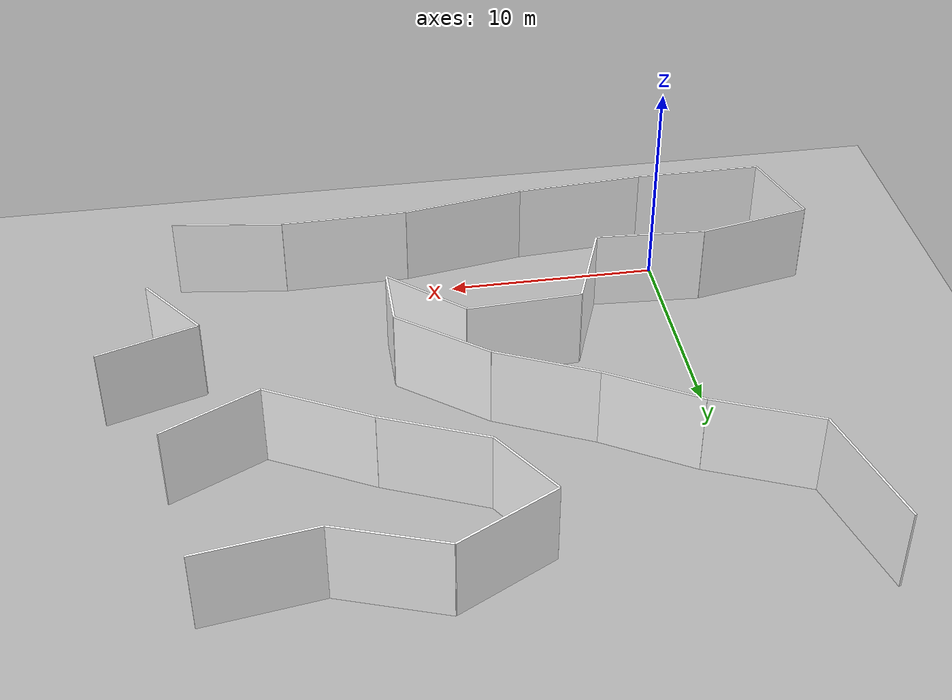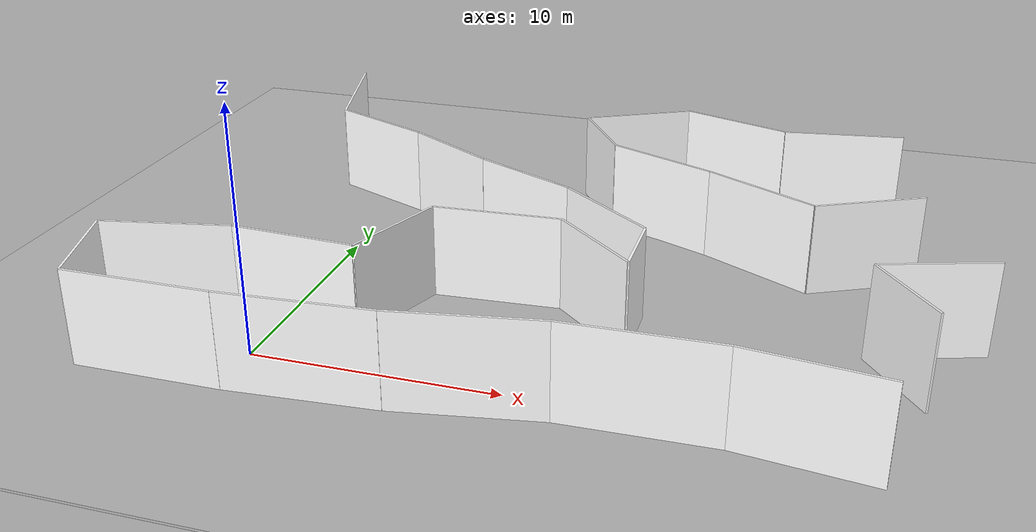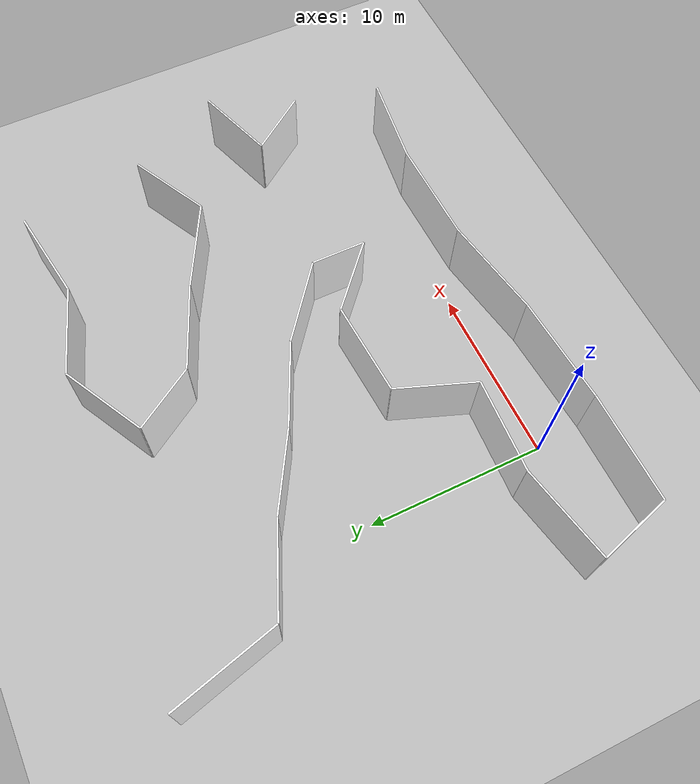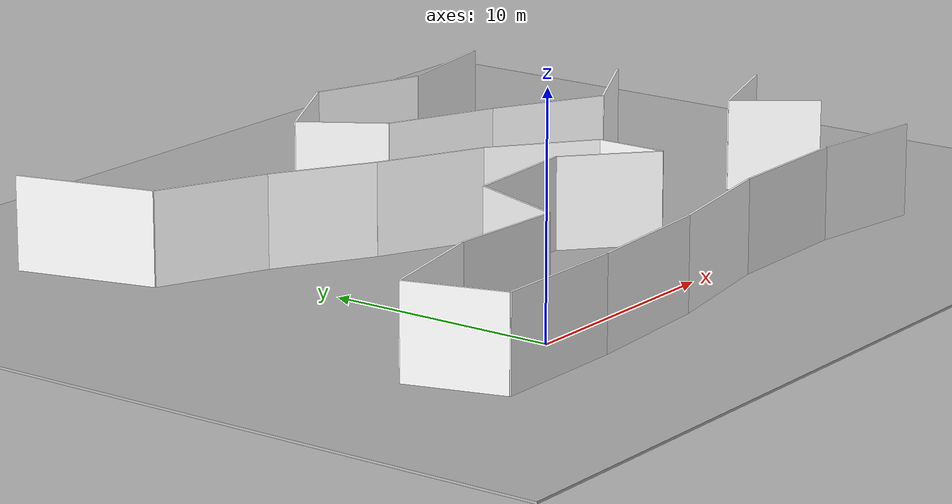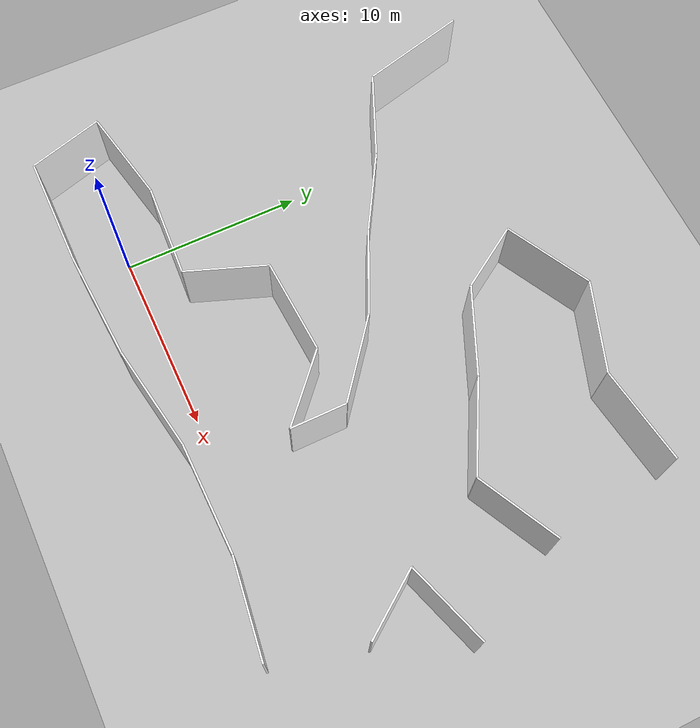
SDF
<sdf version="1.6">
 <world name="mars cave">
  <model name="ground_plane">
   <static>1</static>
   <link name="link">
    <collision name="collision"><geometry><box><size>200 200 0.1</size></box></geometry></collision>
    <visual name="visual">
     <cast_shadows>0</cast_shadows>
     <geometry><box><size>200 200 0.1</size></box></geometry>
     <material>
      <script>
       <uri>model://mars_plane/materials/scripts</uri>
       <uri>model://mars_plane/materials/textures</uri>
       <name>vrc/mars</name>
      </script>
     </material>
    </visual>
   </link>
   <pose>30 30 0 0 0 0</pose>
  </model>
  <model name="wall_18">
   <pose>20.700000000000003 -1.4500000000000002 2.0 0 0 -0.13381097747459078</pose>
   <link name="Wall_0">
    <collision name="Wall_0_Collision">
     <geometry><box><size>5.246903848937961 4 0.1</size></box></geometry>
    </collision>
    <visual name="Wall_0_Visual">
     <geometry><box><size>5.246903848937961 4 0.1</size></box></geometry>
     <material>
      <script>
       <uri>model://walls/materials/scripts</uri>
       <name>mars/wall03</name>
       <uri>model://walls/materials/textures</uri>
      </script>
      <ambient>1 1 1 1</ambient>
     </material>
    </visual>
    <pose>0 0 0 1.5707963267948966 0 0</pose>
   </link>
   <static>1</static>
  </model>
  <model name="wall_19">
   <pose>15.100000000000001 -1.15 2.0 0 0 0.016665123713940723</pose>
   <link name="Wall_0">
    <collision name="Wall_0_Collision">
     <geometry><box><size>6.000833275471001 4 0.1</size></box></geometry>
    </collision>
    <visual name="Wall_0_Visual">
     <geometry><box><size>6.000833275471001 4 0.1</size></box></geometry>
     <material>
      <script>
       <uri>model://walls/materials/scripts</uri>
       <name>mars/wall03</name>
       <uri>model://walls/materials/textures</uri>
      </script>
      <ambient>1 1 1 1</ambient>
     </material>
    </visual>
    <pose>0 0 0 1.5707963267948966 0 0</pose>
   </link>
   <static>1</static>
  </model>
  <model name="wall_20">
   <pose>9.2 -1.7000000000000002 2.0 0 0 0.17073521147528284</pose>
   <link name="Wall_0">
    <collision name="Wall_0_Collision">
     <geometry><box><size>5.885575587824865 4 0.1</size></box></geometry>
    </collision>
    <visual name="Wall_0_Visual">
     <geometry><box><size>5.885575587824865 4 0.1</size></box></geometry>
     <material>
      <script>
       <uri>model://walls/materials/scripts</uri>
       <name>mars/wall03</name>
       <uri>model://walls/materials/textures</uri>
      </script>
      <ambient>1 1 1 1</ambient>
     </material>
    </visual>
    <pose>0 0 0 1.5707963267948966 0 0</pose>
   </link>
   <static>1</static>
  </model>
  <model name="wall_21">
   <pose>3.25 -2.4000000000000004 2.0 0 0 0.0654800249234648</pose>
   <link name="Wall_0">
    <collision name="Wall_0_Collision">
     <geometry><box><size>6.113100686231169 4 0.1</size></box></geometry>
    </collision>
    <visual name="Wall_0_Visual">
     <geometry><box><size>6.113100686231169 4 0.1</size></box></geometry>
     <material>
      <script>
       <uri>model://walls/materials/scripts</uri>
       <name>mars/wall03</name>
       <uri>model://walls/materials/textures</uri>
      </script>
      <ambient>1 1 1 1</ambient>
     </material>
    </visual>
    <pose>0 0 0 1.5707963267948966 0 0</pose>
   </link>
   <static>1</static>
  </model>
  <model name="wall_22">
   <pose>-2.85 -2.6 2.0 0 0 0.0</pose>
   <link name="Wall_0">
    <collision name="Wall_0_Collision">
     <geometry><box><size>6.1000000000000005 4 0.1</size></box></geometry>
    </collision>
    <visual name="Wall_0_Visual">
     <geometry><box><size>6.1000000000000005 4 0.1</size></box></geometry>
     <material>
      <script>
       <uri>model://walls/materials/scripts</uri>
       <name>mars/wall03</name>
       <uri>model://walls/materials/textures</uri>
      </script>
      <ambient>1 1 1 1</ambient>
     </material>
    </visual>
    <pose>0 0 0 1.5707963267948966 0 0</pose>
   </link>
   <static>1</static>
  </model>
  <model name="wall_23">
   <pose>-6.5 -0.55 2.0 0 0 -1.2860658882721845</pose>
   <link name="Wall_0">
    <collision name="Wall_0_Collision">
     <geometry><box><size>4.272001872658765 4 0.1</size></box></geometry>
    </collision>
    <visual name="Wall_0_Visual">
     <geometry><box><size>4.272001872658765 4 0.1</size></box></geometry>
     <material>
      <script>
       <uri>model://walls/materials/scripts</uri>
       <name>mars/wall03</name>
       <uri>model://walls/materials/textures</uri>
      </script>
      <ambient>1 1 1 1</ambient>
     </material>
    </visual>
    <pose>0 0 0 1.5707963267948966 0 0</pose>
   </link>
   <static>1</static>
  </model>
  <model name="wall_24">
   <pose>-4.45 2.05 2.0 0 0 -2.936950843760015</pose>
   <link name="Wall_0">
    <collision name="Wall_0_Collision">
     <geometry><box><size>5.412947441089743 4 0.1</size></box></geometry>
    </collision>
    <visual name="Wall_0_Visual">
     <geometry><box><size>5.412947441089743 4 0.1</size></box></geometry>
     <material>
      <script>
       <uri>model://walls/materials/scripts</uri>
       <name>mars/wall04</name>
       <uri>model://walls/materials/textures</uri>
      </script>
      <ambient>1 1 1 1</ambient>
     </material>
    </visual>
    <pose>0 0 0 1.5707963267948966 0 0</pose>
   </link>
   <static>1</static>
  </model>
  <model name="wall_25">
   <pose>0.7999999999999999 2.45 2.0 0 0 3.083964226112319</pose>
   <link name="Wall_0">
    <collision name="Wall_0_Collision">
     <geometry><box><size>5.208646657242167 4 0.1</size></box></geometry>
    </collision>
    <visual name="Wall_0_Visual">
     <geometry><box><size>5.208646657242167 4 0.1</size></box></geometry>
     <material>
      <script>
       <uri>model://walls/materials/scripts</uri>
       <name>mars/wall04</name>
       <uri>model://walls/materials/textures</uri>
      </script>
      <ambient>1 1 1 1</ambient>
     </material>
    </visual>
    <pose>0 0 0 1.5707963267948966 0 0</pose>
   </link>
   <static>1</static>
  </model>
  <model name="wall_26">
   <pose>4.2 4.449999999999999 2.0 0 0 -1.9270159821910469</pose>
   <link name="Wall_0">
    <collision name="Wall_0_Collision">
     <geometry><box><size>4.588027898781784 4 0.1</size></box></geometry>
    </collision>
    <visual name="Wall_0_Visual">
     <geometry><box><size>4.588027898781784 4 0.1</size></box></geometry>
     <material>
      <script>
       <uri>model://walls/materials/scripts</uri>
       <name>mars/wall04</name>
       <uri>model://walls/materials/textures</uri>
      </script>
      <ambient>1 1 1 1</ambient>
     </material>
    </visual>
    <pose>0 0 0 1.5707963267948966 0 0</pose>
   </link>
   <static>1</static>
  </model>
  <model name="wall_27">
   <pose>7.65 6.75 2.0 0 0 -3.085049216644976</pose>
   <link name="Wall_0">
    <collision name="Wall_0_Collision">
     <geometry><box><size>5.3084837759948 4 0.1</size></box></geometry>
    </collision>
    <visual name="Wall_0_Visual">
     <geometry><box><size>5.3084837759948 4 0.1</size></box></geometry>
     <material>
      <script>
       <uri>model://walls/materials/scripts</uri>
       <name>mars/wall04</name>
       <uri>model://walls/materials/textures</uri>
      </script>
      <ambient>1 1 1 1</ambient>
     </material>
    </visual>
    <pose>0 0 0 1.5707963267948966 0 0</pose>
   </link>
   <static>1</static>
  </model>
  <model name="wall_28">
   <pose>11.95 5.4 2.0 0 0 2.403777593469328</pose>
   <link name="Wall_0">
    <collision name="Wall_0_Collision">
     <geometry><box><size>4.459820624195551 4 0.1</size></box></geometry>
    </collision>
    <visual name="Wall_0_Visual">
     <geometry><box><size>4.459820624195551 4 0.1</size></box></geometry>
     <material>
      <script>
       <uri>model://walls/materials/scripts</uri>
       <name>mars/wall04</name>
       <uri>model://walls/materials/textures</uri>
      </script>
      <ambient>1 1 1 1</ambient>
     </material>
    </visual>
    <pose>0 0 0 1.5707963267948966 0 0</pose>
   </link>
   <static>1</static>
  </model>
  <model name="wall_29">
   <pose>13.6 5.45 2.0 0 0 -1.5707963267948966</pose>
   <link name="Wall_0">
    <collision name="Wall_0_Collision"><geometry><box><size>3.1 4 0.1</size></box></geometry></collision>
    <visual name="Wall_0_Visual">
     <geometry><box><size>3.1 4 0.1</size></box></geometry>
     <material>
      <script>
       <uri>model://walls/materials/scripts</uri>
       <name>mars/wall04</name>
       <uri>model://walls/materials/textures</uri>
      </script>
      <ambient>1 1 1 1</ambient>
     </material>
    </visual>
    <pose>0 0 0 1.5707963267948966 0 0</pose>
   </link>
   <static>1</static>
  </model>
  <model name="wall_30">
   <pose>11.649999999999999 8.55 2.0 0 0 -0.6716061562537401</pose>
   <link name="Wall_0">
    <collision name="Wall_0_Collision">
     <geometry><box><size>4.98196748283246 4 0.1</size></box></geometry>
    </collision>
    <visual name="Wall_0_Visual">
     <geometry><box><size>4.98196748283246 4 0.1</size></box></geometry>
     <material>
      <script>
       <uri>model://walls/materials/scripts</uri>
       <name>mars/wall04</name>
       <uri>model://walls/materials/textures</uri>
      </script>
      <ambient>1 1 1 1</ambient>
     </material>
    </visual>
    <pose>0 0 0 1.5707963267948966 0 0</pose>
   </link>
   <static>1</static>
  </model>
  <model name="wall_31">
   <pose>7.5 11.149999999999999 2.0 0 0 -0.4453010438876858</pose>
   <link name="Wall_0">
    <collision name="Wall_0_Collision">
     <geometry><box><size>4.875448697299562 4 0.1</size></box></geometry>
    </collision>
    <visual name="Wall_0_Visual">
     <geometry><box><size>4.875448697299562 4 0.1</size></box></geometry>
     <material>
      <script>
       <uri>model://walls/materials/scripts</uri>
       <name>mars/wall04</name>
       <uri>model://walls/materials/textures</uri>
      </script>
      <ambient>1 1 1 1</ambient>
     </material>
    </visual>
    <pose>0 0 0 1.5707963267948966 0 0</pose>
   </link>
   <static>1</static>
  </model>
  <model name="wall_32">
   <pose>3.3 13.399999999999999 2.0 0 0 -0.5404195002705843</pose>
   <link name="Wall_0">
    <collision name="Wall_0_Collision">
     <geometry><box><size>4.664761515876241 4 0.1</size></box></geometry>
    </collision>
    <visual name="Wall_0_Visual">
     <geometry><box><size>4.664761515876241 4 0.1</size></box></geometry>
     <material>
      <script>
       <uri>model://walls/materials/scripts</uri>
       <name>mars/wall05</name>
       <uri>model://walls/materials/textures</uri>
      </script>
      <ambient>1 1 1 1</ambient>
     </material>
    </visual>
    <pose>0 0 0 1.5707963267948966 0 0</pose>
   </link>
   <static>1</static>
  </model>
  <model name="wall_33">
   <pose>-0.9999999999999999 15.600000000000001 2.0 0 0 -0.41012734054149136</pose>
   <link name="Wall_0">
    <collision name="Wall_0_Collision">
     <geometry><box><size>5.015974481593782 4 0.1</size></box></geometry>
    </collision>
    <visual name="Wall_0_Visual">
     <geometry><box><size>5.015974481593782 4 0.1</size></box></geometry>
     <material>
      <script>
       <uri>model://walls/materials/scripts</uri>
       <name>mars/wall05</name>
       <uri>model://walls/materials/textures</uri>
      </script>
      <ambient>1 1 1 1</ambient>
     </material>
    </visual>
    <pose>0 0 0 1.5707963267948966 0 0</pose>
   </link>
   <static>1</static>
  </model>
  <model name="wall_34">
   <pose>-4.05 19.55 2.0 0 0 -1.3218336210021795</pose>
   <link name="Wall_0">
    <collision name="Wall_0_Collision">
     <geometry><box><size>6.087692502089768 4 0.1</size></box></geometry>
    </collision>
    <visual name="Wall_0_Visual">
     <geometry><box><size>6.087692502089768 4 0.1</size></box></geometry>
     <material>
      <script>
       <uri>model://walls/materials/scripts</uri>
       <name>mars/wall05</name>
       <uri>model://walls/materials/textures</uri>
      </script>
      <ambient>1 1 1 1</ambient>
     </material>
    </visual>
    <pose>0 0 0 1.5707963267948966 0 0</pose>
   </link>
   <static>1</static>
  </model>
  <model name="wall_88">
   <pose>21.85 12.2 2.0 0 0 0.4729066036629293</pose>
   <link name="Wall_0">
    <collision name="Wall_0_Collision">
     <geometry><box><size>4.83011387029333 4 0.1</size></box></geometry>
    </collision>
    <visual name="Wall_0_Visual">
     <geometry><box><size>4.83011387029333 4 0.1</size></box></geometry>
     <material>
      <script>
       <uri>model://walls/materials/scripts</uri>
       <name>mars/wall12</name>
       <uri>model://walls/materials/textures</uri>
      </script>
      <ambient>1 1 1 1</ambient>
     </material>
    </visual>
    <pose>0 0 0 1.5707963267948966 0 0</pose>
   </link>
   <static>1</static>
  </model>
  <model name="wall_89">
   <pose>17.4 12.35 2.0 0 0 -0.49782233261700126</pose>
   <link name="Wall_0">
    <collision name="Wall_0_Collision">
     <geometry><box><size>5.235456045083369 4 0.1</size></box></geometry>
    </collision>
    <visual name="Wall_0_Visual">
     <geometry><box><size>5.235456045083369 4 0.1</size></box></geometry>
     <material>
      <script>
       <uri>model://walls/materials/scripts</uri>
       <name>mars/wall12</name>
       <uri>model://walls/materials/textures</uri>
      </script>
      <ambient>1 1 1 1</ambient>
     </material>
    </visual>
    <pose>0 0 0 1.5707963267948966 0 0</pose>
   </link>
   <static>1</static>
  </model>
  <model name="wall_90">
   <pose>12.8 14.6 2.0 0 0 -0.410127340541491</pose>
   <link name="Wall_0">
    <collision name="Wall_0_Collision">
     <geometry><box><size>5.015974481593781 4 0.1</size></box></geometry>
    </collision>
    <visual name="Wall_0_Visual">
     <geometry><box><size>5.015974481593781 4 0.1</size></box></geometry>
     <material>
      <script>
       <uri>model://walls/materials/scripts</uri>
       <name>mars/wall12</name>
       <uri>model://walls/materials/textures</uri>
      </script>
      <ambient>1 1 1 1</ambient>
     </material>
    </visual>
    <pose>0 0 0 1.5707963267948966 0 0</pose>
   </link>
   <static>1</static>
  </model>
  <model name="wall_91">
   <pose>9.45 17.25 2.0 0 0 -1.0040671092713902</pose>
   <link name="Wall_0">
    <collision name="Wall_0_Collision">
     <geometry><box><size>3.9115214431215883 4 0.1</size></box></geometry>
    </collision>
    <visual name="Wall_0_Visual">
     <geometry><box><size>3.9115214431215883 4 0.1</size></box></geometry>
     <material>
      <script>
       <uri>model://walls/materials/scripts</uri>
       <name>mars/wall12</name>
       <uri>model://walls/materials/textures</uri>
      </script>
      <ambient>1 1 1 1</ambient>
     </material>
    </visual>
    <pose>0 0 0 1.5707963267948966 0 0</pose>
   </link>
   <static>1</static>
  </model>
  <model name="wall_92">
   <pose>10.65 20.1 2.0 0 0 -2.6516353273360647</pose>
   <link name="Wall_0">
    <collision name="Wall_0_Collision">
     <geometry><box><size>5.100000000000001 4 0.1</size></box></geometry>
    </collision>
    <visual name="Wall_0_Visual">
     <geometry><box><size>5.100000000000001 4 0.1</size></box></geometry>
     <material>
      <script>
       <uri>model://walls/materials/scripts</uri>
       <name>mars/wall12</name>
       <uri>model://walls/materials/textures</uri>
      </script>
      <ambient>1 1 1 1</ambient>
     </material>
    </visual>
    <pose>0 0 0 1.5707963267948966 0 0</pose>
   </link>
   <static>1</static>
  </model>
  <model name="wall_93">
   <pose>15.3 20.450000000000003 2.0 0 0 2.8012107149478864</pose>
   <link name="Wall_0">
    <collision name="Wall_0_Collision">
     <geometry><box><size>5.092150822589605 4 0.1</size></box></geometry>
    </collision>
    <visual name="Wall_0_Visual">
     <geometry><box><size>5.092150822589605 4 0.1</size></box></geometry>
     <material>
      <script>
       <uri>model://walls/materials/scripts</uri>
       <name>mars/wall12</name>
       <uri>model://walls/materials/textures</uri>
      </script>
      <ambient>1 1 1 1</ambient>
     </material>
    </visual>
    <pose>0 0 0 1.5707963267948966 0 0</pose>
   </link>
   <static>1</static>
  </model>
  <model name="wall_94">
   <pose>20.35 20.0 2.0 0 0 -2.9917801970168965</pose>
   <link name="Wall_0">
    <collision name="Wall_0_Collision">
     <geometry><box><size>5.360037313302959 4 0.1</size></box></geometry>
    </collision>
    <visual name="Wall_0_Visual">
     <geometry><box><size>5.360037313302959 4 0.1</size></box></geometry>
     <material>
      <script>
       <uri>model://walls/materials/scripts</uri>
       <name>mars/wall12</name>
       <uri>model://walls/materials/textures</uri>
      </script>
      <ambient>1 1 1 1</ambient>
     </material>
    </visual>
    <pose>0 0 0 1.5707963267948966 0 0</pose>
   </link>
   <static>1</static>
  </model>
  <model name="wall_96">
   <pose>24.45 7.05 2.0 0 0 0.3217505543966422</pose>
   <link name="Wall_0">
    <collision name="Wall_0_Collision">
     <geometry><box><size>4.743416490252569 4 0.1</size></box></geometry>
    </collision>
    <visual name="Wall_0_Visual">
     <geometry><box><size>4.743416490252569 4 0.1</size></box></geometry>
     <material>
      <script>
       <uri>model://walls/materials/scripts</uri>
       <name>mars/wall13</name>
       <uri>model://walls/materials/textures</uri>
      </script>
      <ambient>1 1 1 1</ambient>
     </material>
    </visual>
    <pose>0 0 0 1.5707963267948966 0 0</pose>
   </link>
   <static>1</static>
  </model>
  <model name="wall_97">
   <pose>23.35 4.7 2.0 0 0 2.193995656728963</pose>
   <link name="Wall_0">
    <collision name="Wall_0_Collision">
     <geometry><box><size>3.9408120990476063 4 0.1</size></box></geometry>
    </collision>
    <visual name="Wall_0_Visual">
     <geometry><box><size>3.9408120990476063 4 0.1</size></box></geometry>
     <material>
      <script>
       <uri>model://walls/materials/scripts</uri>
       <name>mars/stop_sign</name>
       <uri>model://walls/materials/textures</uri>
      </script>
      <ambient>1 1 1 1</ambient>
     </material>
    </visual>
    <pose>0 0 0 1.5707963267948966 0 0</pose>
   </link>
   <static>1</static>
  </model>
 </world>
</sdf>
